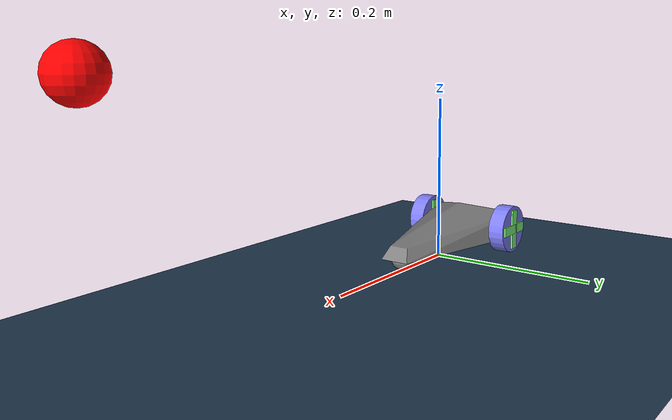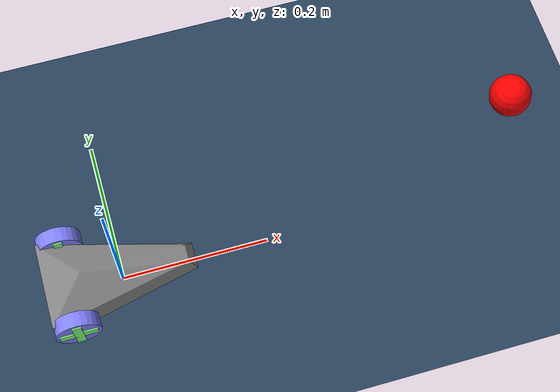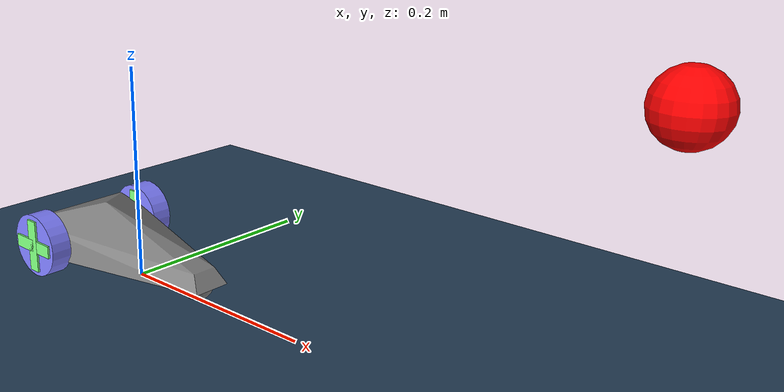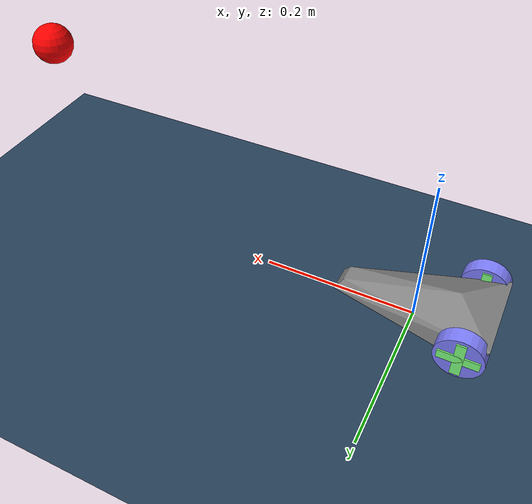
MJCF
<mujoco>
  <compiler autolimits="true"/>
  <option impratio="0.1"/>
  <statistic center="0 0 0.05" extent="0.3"/>

  <visual>
    <headlight diffuse="0.6 0.6 0.6" ambient="0.3 0.3 0.3" specular="0 0 0"/>
    <rgba haze="0.15 0.25 0.35 1"/>
    <global azimuth="60" elevation="-20"/>
  </visual>

  <asset>
    <texture type="skybox" builtin="gradient" rgb1="0.3 0.5 0.7" rgb2="0 0 0" width="512" height="3072"/>
    <texture type="2d" name="groundplane" builtin="checker" mark="edge" rgb1="0.2 0.3 0.4" rgb2="0.1 0.2 0.3"
      markrgb="0.8 0.8 0.8" width="300" height="300"/>
    <material name="groundplane" texture="groundplane" texuniform="true" texrepeat="5 5" reflectance="0.2"/>
    <mesh name="chasis" scale=".01 .006 .0015"
      vertex=" 9   2   0
              -10  10  10
               9  -2   0
               10  3  -10
               10 -3  -10
              -8   10 -10
              -10 -10  10
              -8  -10 -10
              -5   0   20"/>
  </asset>

  <default>
    <joint damping=".03" actuatorfrcrange="-0.5 0.5"/>
    <default class="wheel">
      <geom type="cylinder" size=".03 .01" rgba=".5 .5 1 1"/>
    </default>
    <default class="decor">
      <site type="box" rgba=".5 1 .5 1"/>
    </default>
  </default>

  <worldbody>
    <light pos="0 0 1"/>
    <light pos="0 -0.2 1" dir="0 0.2 -0.8" directional="true"/>
    <geom name="floor" size="0 0 0.05" type="plane" material="groundplane"/>

    <body name="car" pos="0 0 .03">
      <freejoint/>

      <camera name="car_top_cam" pos="-0.06 0 0.1" fovy="78" mode="fixed" euler="180 -100 90"/>

      <light name="top light" pos="0 0 2" mode="trackcom" diffuse=".4 .4 .4"/>
      <geom name="chasis" type="mesh" mesh="chasis"/>
      <geom name="front wheel" pos=".08 0 -.015" type="sphere" size=".015" condim="1" priority="1"/>
      <light name="front light" pos=".1 0 .02" dir="2 0 -1" diffuse="1 1 1"/>
      <body name="left wheel" pos="-.07 .06 0" zaxis="0 1 0">
        <joint name="left"/>
        <geom class="wheel"/>
        <site class="decor" size=".006 .025 .012"/>
        <site class="decor" size=".025 .006 .012"/>
      </body>

      <body name="right wheel" pos="-.07 -.06 0" zaxis="0 1 0">
        <joint name="right"/>
        <geom class="wheel"/>
        <site class="decor" size=".006 .025 .012"/>
        <site class="decor" size=".025 .006 .012"/>
      </body>

    </body>

    <body pos="0.5 0.0 0.25">
          <joint name="sphere_joint" type="free"/>
          <geom size="0.025" type="sphere" mass="0.01" rgba="1 0 0 1"/>
    </body>

  </worldbody>

  <actuator>
    <motor class="wheel" name="left" joint="left" ctrlrange="-1 1"/>
    <motor class="wheel" name="right" joint="right" ctrlrange="-1 1"/>
  </actuator>

  <sensor>
    <jointactuatorfrc name="right" joint="right"/>
    <jointactuatorfrc name="left" joint="left"/>
  </sensor>

  <keyframe>
    <key name="home"
         qpos="0 0 0 1 0 0 0
         0 0
         0.5 0.0 0.25 1 0 0 0  "/>
  </keyframe>

</mujoco>
